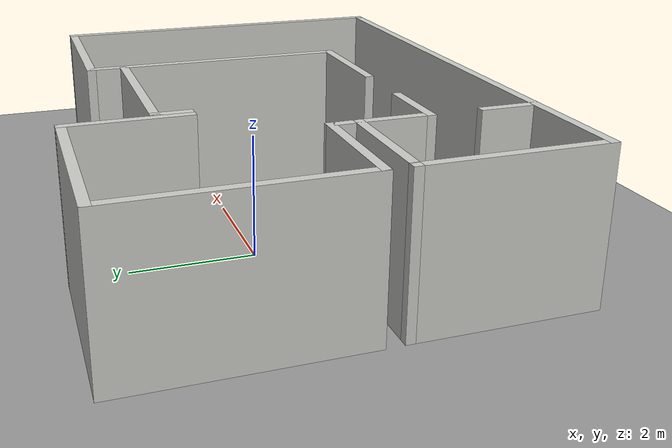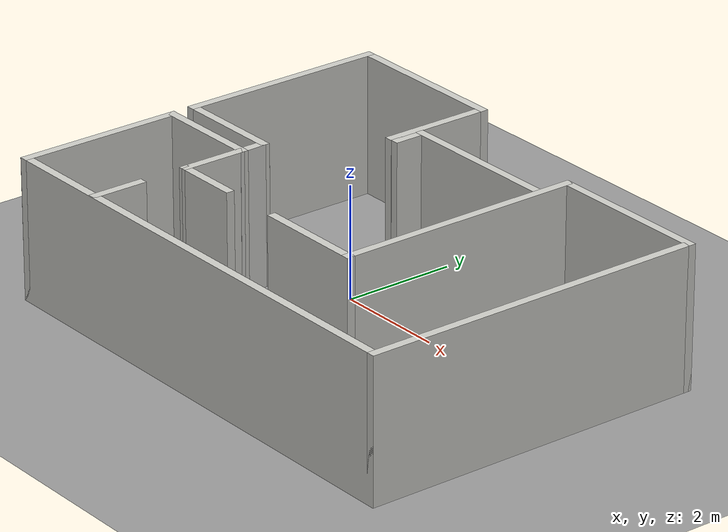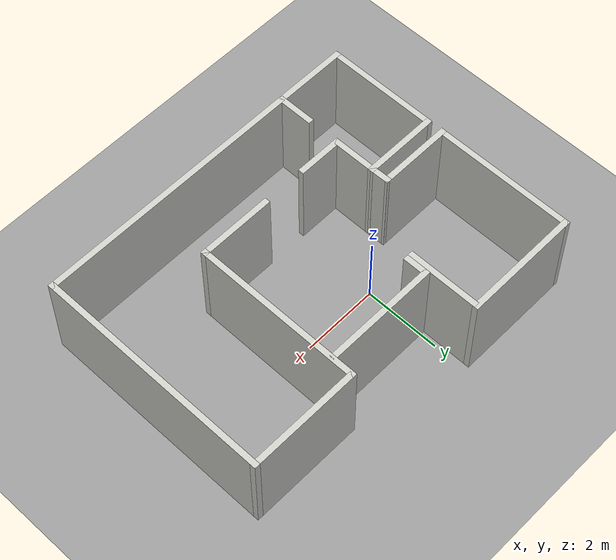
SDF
<sdf version='1.7'>
  <model name='my_house'>
<light name='sun' type='directional'>
      <cast_shadows>1</cast_shadows>
      <pose>0 0 10 0 -0 0</pose>
      <diffuse>0.8 0.8 0.8 1</diffuse>
      <specular>0.2 0.2 0.2 1</specular>
      <attenuation>
        <range>1000</range>
        <constant>0.9</constant>
        <linear>0.01</linear>
        <quadratic>0.001</quadratic>
      </attenuation>
      <direction>-0.5 0.1 -0.9</direction>
      <spot>
        <inner_angle>0</inner_angle>
        <outer_angle>0</outer_angle>
        <falloff>0</falloff>
      </spot>
    </light>
    <model name='ground_plane'>
      <static>1</static>
      <link name='link'>
        <collision name='collision'>
          <geometry>
            <plane>
              <normal>0 0 1</normal>
              <size>100 100</size>
            </plane>
          </geometry>
          <surface>
            <contact>
              <collide_bitmask>65535</collide_bitmask>
              <ode/>
            </contact>
            <friction>
              <ode>
                <mu>100</mu>
                <mu2>50</mu2>
              </ode>
              <torsional>
                <ode/>
              </torsional>
            </friction>
            <bounce/>
          </surface>
          <max_contacts>10</max_contacts>
        </collision>
        <visual name='visual'>
          <cast_shadows>0</cast_shadows>
          <geometry>
            <plane>
              <normal>0 0 1</normal>
              <size>100 100</size>
            </plane>
          </geometry>
          <material>
            <script>
              <uri>file://media/materials/scripts/gazebo.material</uri>
              <name>Gazebo/Grey</name>
            </script>
          </material>
        </visual>
        <self_collide>0</self_collide>
        <enable_wind>0</enable_wind>
        <kinematic>0</kinematic>
      </link>
    </model>
    <gravity>0 0 -9.8</gravity>
    <magnetic_field>6e-06 2.3e-05 -4.2e-05</magnetic_field>
    <atmosphere type='adiabatic'/>
    <physics type='ode'>
      <max_step_size>0.001</max_step_size>
      <real_time_factor>1</real_time_factor>
      <real_time_update_rate>1000</real_time_update_rate>
    </physics>
    <scene>
      <ambient>0.4 0.4 0.4 1</ambient>
      <background>0.7 0.7 0.7 1</background>
      <shadows>1</shadows>
    </scene>
    <wind/>
    <spherical_coordinates>
      <surface_model>EARTH_WGS84</surface_model>
      <latitude_deg>0</latitude_deg>
      <longitude_deg>0</longitude_deg>
      <elevation>0</elevation>
      <heading_deg>0</heading_deg>
    </spherical_coordinates>
    <model name='turtlebot3_my_world'>
      <pose>1.29554 -0.60492 0 0 -0 0</pose>
      <link name='Wall_0'>
        <collision name='Wall_0_Collision'>
          <geometry>
            <box>
              <size>3.1 0.15 2.5</size>
            </box>
          </geometry>
          <pose>0 0 1.25 0 -0 0</pose>
          <max_contacts>10</max_contacts>
          <surface>
            <contact>
              <ode/>
            </contact>
            <bounce/>
            <friction>
              <torsional>
                <ode/>
              </torsional>
              <ode/>
            </friction>
          </surface>
        </collision>
        <visual name='Wall_0_Visual'>
          <pose>0 0 1.25 0 -0 0</pose>
          <geometry>
            <box>
              <size>3.1 0.15 2.5</size>
            </box>
          </geometry>
          <material>
            <script>
              <uri>file://media/materials/scripts/gazebo.material</uri>
              <name>Gazebo/CeilingTiled</name>
            </script>
            <ambient>1 1 1 1</ambient>
          </material>
          <meta>
            <layer>0</layer>
          </meta>
        </visual>
        <pose>-2.95454 3.4405 0 0 -0 0</pose>
        <self_collide>0</self_collide>
        <enable_wind>0</enable_wind>
        <kinematic>0</kinematic>
      </link>
      <link name='Wall_11'>
        <collision name='Wall_11_Collision'>
          <geometry>
            <box>
              <size>2 0.15 2.5</size>
            </box>
          </geometry>
          <pose>0 0 1.25 0 -0 0</pose>
          <max_contacts>10</max_contacts>
          <surface>
            <contact>
              <ode/>
            </contact>
            <bounce/>
            <friction>
              <torsional>
                <ode/>
              </torsional>
              <ode/>
            </friction>
          </surface>
        </collision>
        <visual name='Wall_11_Visual'>
          <pose>0 0 1.25 0 -0 0</pose>
          <geometry>
            <box>
              <size>2 0.15 2.5</size>
            </box>
          </geometry>
          <material>
            <script>
              <uri>file://media/materials/scripts/gazebo.material</uri>
              <name>Gazebo/CeilingTiled</name>
            </script>
            <ambient>1 1 1 1</ambient>
          </material>
          <meta>
            <layer>0</layer>
          </meta>
        </visual>
        <pose>-3.49546 -0.590501 0 0 -0 0</pose>
        <self_collide>0</self_collide>
        <enable_wind>0</enable_wind>
        <kinematic>0</kinematic>
      </link>
      <link name='Wall_12'>
        <collision name='Wall_12_Collision'>
          <geometry>
            <box>
              <size>1.25 0.15 2.5</size>
            </box>
          </geometry>
          <pose>0 0 1.25 0 -0 0</pose>
          <max_contacts>10</max_contacts>
          <surface>
            <contact>
              <ode/>
            </contact>
            <bounce/>
            <friction>
              <torsional>
                <ode/>
              </torsional>
              <ode/>
            </friction>
          </surface>
        </collision>
        <visual name='Wall_12_Visual'>
          <pose>0 0 1.25 0 -0 0</pose>
          <geometry>
            <box>
              <size>1.25 0.15 2.5</size>
            </box>
          </geometry>
          <material>
            <script>
              <uri>file://media/materials/scripts/gazebo.material</uri>
              <name>Gazebo/CeilingTiled</name>
            </script>
            <ambient>1 1 1 1</ambient>
          </material>
          <meta>
            <layer>0</layer>
          </meta>
        </visual>
        <pose>-2.57045 -1.1405 0 0 -0 -1.5708</pose>
        <self_collide>0</self_collide>
        <enable_wind>0</enable_wind>
        <kinematic>0</kinematic>
      </link>
      <link name='Wall_13'>
        <collision name='Wall_13_Collision'>
          <geometry>
            <box>
              <size>1.25001 0.15 2.5</size>
            </box>
          </geometry>
          <pose>0 0 1.25 0 -0 0</pose>
          <max_contacts>10</max_contacts>
          <surface>
            <contact>
              <ode/>
            </contact>
            <bounce/>
            <friction>
              <torsional>
                <ode/>
              </torsional>
              <ode/>
            </friction>
          </surface>
        </collision>
        <visual name='Wall_13_Visual'>
          <pose>0 0 1.25 0 -0 0</pose>
          <geometry>
            <box>
              <size>1.25001 0.15 2.5</size>
            </box>
          </geometry>
          <material>
            <script>
              <uri>file://media/materials/scripts/gazebo.material</uri>
              <name>Gazebo/CeilingTiled</name>
            </script>
            <ambient>1 1 1 1</ambient>
          </material>
          <meta>
            <layer>0</layer>
          </meta>
        </visual>
        <pose>-2.02046 -1.6905 0 0 -0 0</pose>
        <self_collide>0</self_collide>
        <enable_wind>0</enable_wind>
        <kinematic>0</kinematic>
      </link>
      <link name='Wall_17'>
        <collision name='Wall_17_Collision'>
          <geometry>
            <box>
              <size>1 0.15 2.5</size>
            </box>
          </geometry>
          <pose>0 0 1.25 0 -0 0</pose>
          <max_contacts>10</max_contacts>
          <surface>
            <contact>
              <ode/>
            </contact>
            <bounce/>
            <friction>
              <torsional>
                <ode/>
              </torsional>
              <ode/>
            </friction>
          </surface>
        </collision>
        <visual name='Wall_17_Visual'>
          <pose>0 0 1.25 0 -0 0</pose>
          <geometry>
            <box>
              <size>1 0.15 2.5</size>
            </box>
          </geometry>
          <material>
            <script>
              <uri>file://media/materials/scripts/gazebo.material</uri>
              <name>Gazebo/CeilingTiled</name>
            </script>
            <ambient>1 1 1 1</ambient>
          </material>
          <meta>
            <layer>0</layer>
          </meta>
        </visual>
        <pose>-2.5792 -2.99987 0 0 -0 1.5708</pose>
        <self_collide>0</self_collide>
        <enable_wind>0</enable_wind>
        <kinematic>0</kinematic>
      </link>
      <link name='Wall_19'>
        <collision name='Wall_19_Collision'>
          <geometry>
            <box>
              <size>2 0.15 2.5</size>
            </box>
          </geometry>
          <pose>0 0 1.25 0 -0 0</pose>
          <max_contacts>10</max_contacts>
          <surface>
            <contact>
              <ode/>
            </contact>
            <bounce/>
            <friction>
              <torsional>
                <ode/>
              </torsional>
              <ode/>
            </friction>
          </surface>
        </collision>
        <visual name='Wall_19_Visual'>
          <pose>0 0 1.25 0 -0 0</pose>
          <geometry>
            <box>
              <size>2 0.15 2.5</size>
            </box>
          </geometry>
          <material>
            <script>
              <uri>file://media/materials/scripts/gazebo.material</uri>
              <name>Gazebo/CeilingTiled</name>
            </script>
            <ambient>1 1 1 1</ambient>
          </material>
          <meta>
            <layer>0</layer>
          </meta>
        </visual>
        <pose>-3.50454 -0.159499 0 0 -0 0</pose>
        <self_collide>0</self_collide>
        <enable_wind>0</enable_wind>
        <kinematic>0</kinematic>
      </link>
      <link name='Wall_2'>
        <collision name='Wall_2_Collision'>
          <geometry>
            <box>
              <size>3.75 0.15 2.5</size>
            </box>
          </geometry>
          <pose>0 0 1.25 0 -0 0</pose>
          <max_contacts>10</max_contacts>
          <surface>
            <contact>
              <ode/>
            </contact>
            <bounce/>
            <friction>
              <torsional>
                <ode/>
              </torsional>
              <ode/>
            </friction>
          </surface>
        </collision>
        <visual name='Wall_2_Visual'>
          <pose>0 0 1.25 0 -0 0</pose>
          <geometry>
            <box>
              <size>3.75 0.15 2.5</size>
            </box>
          </geometry>
          <material>
            <script>
              <uri>file://media/materials/scripts/gazebo.material</uri>
              <name>Gazebo/CeilingTiled</name>
            </script>
            <ambient>1 1 1 1</ambient>
          </material>
          <meta>
            <layer>0</layer>
          </meta>
        </visual>
        <pose>-4.42955 1.6405 0 0 -0 -1.5708</pose>
        <self_collide>0</self_collide>
        <enable_wind>0</enable_wind>
        <kinematic>0</kinematic>
      </link>
      <link name='Wall_21'>
        <collision name='Wall_21_Collision'>
          <geometry>
            <box>
              <size>0.581098 0.15 2.5</size>
            </box>
          </geometry>
          <pose>0 0 1.25 0 -0 0</pose>
          <max_contacts>10</max_contacts>
          <surface>
            <contact>
              <ode/>
            </contact>
            <bounce/>
            <friction>
              <torsional>
                <ode/>
              </torsional>
              <ode/>
            </friction>
          </surface>
        </collision>
        <visual name='Wall_21_Visual'>
          <pose>0 0 1.25 0 -0 0</pose>
          <geometry>
            <box>
              <size>0.581098 0.15 2.5</size>
            </box>
          </geometry>
          <material>
            <script>
              <uri>file://media/materials/scripts/gazebo.material</uri>
              <name>Gazebo/CeilingTiled</name>
            </script>
            <ambient>1 1 1 1</ambient>
          </material>
          <meta>
            <layer>0</layer>
          </meta>
        </visual>
        <pose>-2.575 -0.375 0 0 -0 -1.54971</pose>
        <self_collide>0</self_collide>
        <enable_wind>0</enable_wind>
        <kinematic>0</kinematic>
      </link>
      <link name='Wall_23'>
        <collision name='Wall_23_Collision'>
          <geometry>
            <box>
              <size>2 0.15 2.5</size>
            </box>
          </geometry>
          <pose>0 0 1.25 0 -0 0</pose>
          <max_contacts>10</max_contacts>
          <surface>
            <contact>
              <ode/>
            </contact>
            <bounce/>
            <friction>
              <torsional>
                <ode/>
              </torsional>
              <ode/>
            </friction>
          </surface>
        </collision>
        <visual name='Wall_23_Visual'>
          <pose>0 0 1.25 0 -0 0</pose>
          <geometry>
            <box>
              <size>2 0.15 2.5</size>
            </box>
          </geometry>
          <material>
            <script>
              <uri>file://media/materials/scripts/gazebo.material</uri>
              <name>Gazebo/CeilingTiled</name>
            </script>
            <ambient>1 1 1 1</ambient>
          </material>
          <meta>
            <layer>0</layer>
          </meta>
        </visual>
        <pose>-1.47955 2.5155 0 0 -0 -1.5708</pose>
        <self_collide>0</self_collide>
        <enable_wind>0</enable_wind>
        <kinematic>0</kinematic>
      </link>
      <link name='Wall_25'>
        <collision name='Wall_25_Collision'>
          <geometry>
            <box>
              <size>3 0.15 2.5</size>
            </box>
          </geometry>
          <pose>0 0 1.25 0 -0 0</pose>
          <max_contacts>10</max_contacts>
          <surface>
            <contact>
              <ode/>
            </contact>
            <bounce/>
            <friction>
              <torsional>
                <ode/>
              </torsional>
              <ode/>
            </friction>
          </surface>
        </collision>
        <visual name='Wall_25_Visual'>
          <pose>0 0 1.25 0 -0 0</pose>
          <geometry>
            <box>
              <size>3 0.15 2.5</size>
            </box>
          </geometry>
          <material>
            <script>
              <uri>file://media/materials/scripts/gazebo.material</uri>
              <name>Gazebo/CeilingTiled</name>
            </script>
            <ambient>1 1 1 1</ambient>
          </material>
          <meta>
            <layer>0</layer>
          </meta>
        </visual>
        <pose>0.086096 2.0958 0 0 -0 3.14159</pose>
        <self_collide>0</self_collide>
        <enable_wind>0</enable_wind>
        <kinematic>0</kinematic>
      </link>
      <link name='Wall_27'>
        <collision name='Wall_27_Collision'>
          <geometry>
            <box>
              <size>0.65 0.15 2.5</size>
            </box>
          </geometry>
          <pose>0 0 1.25 0 -0 0</pose>
          <max_contacts>10</max_contacts>
          <surface>
            <contact>
              <ode/>
            </contact>
            <bounce/>
            <friction>
              <torsional>
                <ode/>
              </torsional>
              <ode/>
            </friction>
          </surface>
        </collision>
        <visual name='Wall_27_Visual'>
          <pose>0 0 1.25 0 -0 0</pose>
          <geometry>
            <box>
              <size>0.65 0.15 2.5</size>
            </box>
          </geometry>
          <material>
            <script>
              <uri>file://media/materials/scripts/gazebo.material</uri>
              <name>Gazebo/CeilingTiled</name>
            </script>
            <ambient>1 1 1 1</ambient>
          </material>
          <meta>
            <layer>0</layer>
          </meta>
        </visual>
        <pose>-1.3389 1.8458 0 0 -0 -1.5708</pose>
        <self_collide>0</self_collide>
        <enable_wind>0</enable_wind>
        <kinematic>0</kinematic>
      </link>
      <link name='Wall_4'>
        <collision name='Wall_4_Collision'>
          <geometry>
            <box>
              <size>3 0.15 2.5</size>
            </box>
          </geometry>
          <pose>0 0 1.25 0 -0 0</pose>
          <max_contacts>10</max_contacts>
          <surface>
            <contact>
              <ode/>
            </contact>
            <bounce/>
            <friction>
              <torsional>
                <ode/>
              </torsional>
              <ode/>
            </friction>
          </surface>
        </collision>
        <visual name='Wall_4_Visual'>
          <pose>0 0 1.25 0 -0 0</pose>
          <geometry>
            <box>
              <size>3 0.15 2.5</size>
            </box>
          </geometry>
          <material>
            <script>
              <uri>file://media/materials/scripts/gazebo.material</uri>
              <name>Gazebo/CeilingTiled</name>
            </script>
            <ambient>1 1 1 1</ambient>
          </material>
          <meta>
            <layer>0</layer>
          </meta>
        </visual>
        <pose>-4.42045 -2.0155 0 0 -0 -1.5708</pose>
        <self_collide>0</self_collide>
        <enable_wind>0</enable_wind>
        <kinematic>0</kinematic>
      </link>
      <link name='Wall_5'>
        <collision name='Wall_5_Collision'>
          <geometry>
            <box>
              <size>9 0.15 2.5</size>
            </box>
          </geometry>
          <pose>0 0 1.25 0 -0 0</pose>
          <max_contacts>10</max_contacts>
          <surface>
            <contact>
              <ode/>
            </contact>
            <bounce/>
            <friction>
              <torsional>
                <ode/>
              </torsional>
              <ode/>
            </friction>
          </surface>
        </collision>
        <visual name='Wall_5_Visual'>
          <pose>0 0 1.25 0 -0 0</pose>
          <geometry>
            <box>
              <size>9 0.15 2.5</size>
            </box>
          </geometry>
          <material>
            <script>
              <uri>file://media/materials/scripts/gazebo.material</uri>
              <name>Gazebo/CeilingTiled</name>
            </script>
            <ambient>1 1 1 1</ambient>
          </material>
          <meta>
            <layer>0</layer>
          </meta>
        </visual>
        <pose>0.004545 -3.4405 0 0 -0 0</pose>
        <self_collide>0</self_collide>
        <enable_wind>0</enable_wind>
        <kinematic>0</kinematic>
      </link>
      <link name='Wall_6'>
        <collision name='Wall_6_Collision'>
          <geometry>
            <box>
              <size>6.25 0.15 2.5</size>
            </box>
          </geometry>
          <pose>0 0 1.25 0 -0 0</pose>
          <max_contacts>10</max_contacts>
          <surface>
            <contact>
              <ode/>
            </contact>
            <bounce/>
            <friction>
              <torsional>
                <ode/>
              </torsional>
              <ode/>
            </friction>
          </surface>
        </collision>
        <visual name='Wall_6_Visual'>
          <pose>0 0 1.25 0 -0 0</pose>
          <geometry>
            <box>
              <size>6.25 0.15 2.5</size>
            </box>
          </geometry>
          <material>
            <script>
              <uri>file://media/materials/scripts/gazebo.material</uri>
              <name>Gazebo/CeilingTiled</name>
            </script>
            <ambient>1 1 1 1</ambient>
          </material>
          <meta>
            <layer>0</layer>
          </meta>
        </visual>
        <pose>4.42955 -0.390501 0 0 -0 1.5708</pose>
        <self_collide>0</self_collide>
        <enable_wind>0</enable_wind>
        <kinematic>0</kinematic>
      </link>
      <link name='Wall_7'>
        <collision name='Wall_7_Collision'>
          <geometry>
            <box>
              <size>3 0.15 2.5</size>
            </box>
          </geometry>
          <pose>0 0 1.25 0 -0 0</pose>
          <max_contacts>10</max_contacts>
          <surface>
            <contact>
              <ode/>
            </contact>
            <bounce/>
            <friction>
              <torsional>
                <ode/>
              </torsional>
              <ode/>
            </friction>
          </surface>
        </collision>
        <visual name='Wall_7_Visual'>
          <pose>0 0 1.25 0 -0 0</pose>
          <geometry>
            <box>
              <size>3 0.15 2.5</size>
            </box>
          </geometry>
          <material>
            <script>
              <uri>file://media/materials/scripts/gazebo.material</uri>
              <name>Gazebo/CeilingTiled</name>
            </script>
            <ambient>1 1 1 1</ambient>
          </material>
          <meta>
            <layer>0</layer>
          </meta>
        </visual>
        <pose>3.00454 2.6595 0 0 -0 3.14159</pose>
        <self_collide>0</self_collide>
        <enable_wind>0</enable_wind>
        <kinematic>0</kinematic>
      </link>
      <link name='Wall_8'>
        <collision name='Wall_8_Collision'>
          <geometry>
            <box>
              <size>4.5 0.15 2.5</size>
            </box>
          </geometry>
          <pose>0 0 1.25 0 -0 0</pose>
          <max_contacts>10</max_contacts>
          <surface>
            <contact>
              <ode/>
            </contact>
            <bounce/>
            <friction>
              <torsional>
                <ode/>
              </torsional>
              <ode/>
            </friction>
          </surface>
        </collision>
        <visual name='Wall_8_Visual'>
          <pose>0 0 1.25 0 -0 0</pose>
          <geometry>
            <box>
              <size>4.5 0.15 2.5</size>
            </box>
          </geometry>
          <material>
            <script>
              <uri>file://media/materials/scripts/gazebo.material</uri>
              <name>Gazebo/CeilingTiled</name>
            </script>
            <ambient>1 1 1 1</ambient>
          </material>
          <meta>
            <layer>0</layer>
          </meta>
        </visual>
        <pose>1.57954 0.484499 0 0 -0 -1.5708</pose>
        <self_collide>0</self_collide>
        <enable_wind>0</enable_wind>
        <kinematic>0</kinematic>
      </link>
      <link name='Wall_9'>
        <collision name='Wall_9_Collision'>
          <geometry>
            <box>
              <size>2 0.15 2.5</size>
            </box>
          </geometry>
          <pose>0 0 1.25 0 -0 0</pose>
          <max_contacts>10</max_contacts>
          <surface>
            <contact>
              <ode/>
            </contact>
            <bounce/>
            <friction>
              <torsional>
                <ode/>
              </torsional>
              <ode/>
            </friction>
          </surface>
        </collision>
        <visual name='Wall_9_Visual'>
          <pose>0 0 1.25 0 -0 0</pose>
          <geometry>
            <box>
              <size>2 0.15 2.5</size>
            </box>
          </geometry>
          <material>
            <script>
              <uri>file://media/materials/scripts/gazebo.material</uri>
              <name>Gazebo/CeilingTiled</name>
            </script>
            <ambient>1 1 1 1</ambient>
          </material>
          <meta>
            <layer>0</layer>
          </meta>
        </visual>
        <pose>0.654545 -1.6905 0 0 -0 3.14159</pose>
        <self_collide>0</self_collide>
        <enable_wind>0</enable_wind>
        <kinematic>0</kinematic>
      </link>
      <static>1</static>
    </model>
    <state world_name='default'>
      <sim_time>364 347000000</sim_time>
      <real_time>370 911742020</real_time>
      <wall_time>1616182816 943312140</wall_time>
      <iterations>364347</iterations>
      <model name='ground_plane'>
        <pose>0 0 0 0 -0 0</pose>
        <scale>1 1 1</scale>
        <link name='link'>
          <pose>0 0 0 0 -0 0</pose>
          <velocity>0 0 0 0 -0 0</velocity>
          <acceleration>0 0 0 0 -0 0</acceleration>
          <wrench>0 0 0 0 -0 0</wrench>
        </link>
      </model>
      <model name='turtlebot3_my_world'>
        <pose>3.03139 1.00601 -0 0 -0 3.13484</pose>
        <scale>1 1 1</scale>
        <link name='Wall_0'>
          <pose>5.96263 -2.45435 -0 0 -0 3.13484</pose>
          <velocity>0 0 0 0 -0 0</velocity>
          <acceleration>0 0 0 0 -0 0</acceleration>
          <wrench>0 0 0 0 -0 0</wrench>
        </link>
        <link name='Wall_11'>
          <pose>6.53075 1.5729 -0 0 -0 3.13484</pose>
          <velocity>0 0 0 0 -0 0</velocity>
          <acceleration>0 0 0 0 -0 0</acceleration>
          <wrench>0 0 0 0 -0 0</wrench>
        </link>
        <link name='Wall_12'>
          <pose>5.60948 2.12914 -0 0 -0 1.56404</pose>
          <velocity>0 0 0 0 -0 0</velocity>
          <acceleration>0 0 0 0 -0 0</acceleration>
          <wrench>0 0 0 0 -0 0</wrench>
        </link>
        <link name='Wall_13'>
          <pose>5.06321 2.68284 -0 0 -0 3.13484</pose>
          <velocity>0 0 0 0 -0 0</velocity>
          <acceleration>0 0 0 0 -0 0</acceleration>
          <wrench>0 0 0 0 -0 0</wrench>
        </link>
        <link name='Wall_17'>
          <pose>5.63078 3.9884 -0 0 0 -1.57754</pose>
          <velocity>0 0 0 0 -0 0</velocity>
          <acceleration>0 0 0 0 -0 0</acceleration>
          <wrench>0 0 0 0 -0 0</wrench>
        </link>
        <link name='Wall_19'>
          <pose>6.53692 1.14185 -0 0 -0 3.13484</pose>
          <velocity>0 0 0 0 -0 0</velocity>
          <acceleration>0 0 0 0 -0 0</acceleration>
          <wrench>0 0 0 0 -0 0</wrench>
        </link>
        <link name='Wall_2'>
          <pose>7.44976 -0.664352 -0 0 -0 1.56404</pose>
          <velocity>0 0 0 0 -0 0</velocity>
          <acceleration>0 0 0 0 -0 0</acceleration>
          <wrench>0 0 0 0 -0 0</wrench>
        </link>
        <link name='Wall_21'>
          <pose>5.60886 1.36362 -0 0 -0 1.58513</pose>
          <velocity>0 0 0 0 -0 0</velocity>
          <acceleration>0 0 0 0 -0 0</acceleration>
          <wrench>0 0 0 0 -0 0</wrench>
        </link>
        <link name='Wall_23'>
          <pose>4.49392 -1.51942 -0 0 -0 1.56404</pose>
          <velocity>0 0 0 0 -0 0</velocity>
          <acceleration>0 0 0 0 -0 0</acceleration>
          <wrench>0 0 0 0 -0 0</wrench>
        </link>
        <link name='Wall_25'>
          <pose>2.93114 -1.08916 -0 0 0 -0.006754</pose>
          <velocity>0 0 0 0 -0 0</velocity>
          <acceleration>0 0 0 0 -0 0</acceleration>
          <wrench>0 0 0 0 -0 0</wrench>
        </link>
        <link name='Wall_27'>
          <pose>4.35779 -0.848783 -0 0 -0 1.56404</pose>
          <velocity>0 0 0 0 -0 0</velocity>
          <acceleration>0 0 0 0 -0 0</acceleration>
          <wrench>0 0 0 0 -0 0</wrench>
        </link>
        <link name='Wall_4'>
          <pose>7.46534 2.99163 -0 0 -0 1.56404</pose>
          <velocity>0 0 0 0 -0 0</velocity>
          <acceleration>0 0 0 0 -0 0</acceleration>
          <wrench>0 0 0 0 -0 0</wrench>
        </link>
        <link name='Wall_5'>
          <pose>3.05007 4.44647 -0 0 -0 3.13484</pose>
          <velocity>0 0 0 0 -0 0</velocity>
          <acceleration>0 0 0 0 -0 0</acceleration>
          <wrench>0 0 0 0 -0 0</wrench>
        </link>
        <link name='Wall_6'>
          <pose>-1.39543 1.42641 -0 0 0 -1.57754</pose>
          <velocity>0 0 0 0 -0 0</velocity>
          <acceleration>0 0 0 0 -0 0</acceleration>
          <wrench>0 0 0 0 -0 0</wrench>
        </link>
        <link name='Wall_7'>
          <pose>0.008959 -1.63314 -0 0 0 -0.006754</pose>
          <velocity>0 0 0 0 -0 0</velocity>
          <acceleration>0 0 0 0 -0 0</acceleration>
          <wrench>0 0 0 0 -0 0</wrench>
        </link>
        <link name='Wall_8'>
          <pose>1.44861 0.53219 -0 0 -0 1.56404</pose>
          <velocity>0 0 0 0 -0 0</velocity>
          <acceleration>0 0 0 0 -0 0</acceleration>
          <wrench>0 0 0 0 -0 0</wrench>
        </link>
        <link name='Wall_9'>
          <pose>2.38827 2.7009 -0 0 0 -0.006754</pose>
          <velocity>0 0 0 0 -0 0</velocity>
          <acceleration>0 0 0 0 -0 0</acceleration>
          <wrench>0 0 0 0 -0 0</wrench>
        </link>
      </model>
      <light name='sun'>
        <pose>0 0 10 0 -0 0</pose>
      </light>
    </state>
    <gui fullscreen='0'>
      <camera name='user_camera'>
        <pose>0.090415 -11.3677 16.3545 0 0.928092 1.41739</pose>
        <view_controller>orbit</view_controller>
        <projection_type>perspective</projection_type>
      </camera>
    </gui>
  </model>
</sdf>
